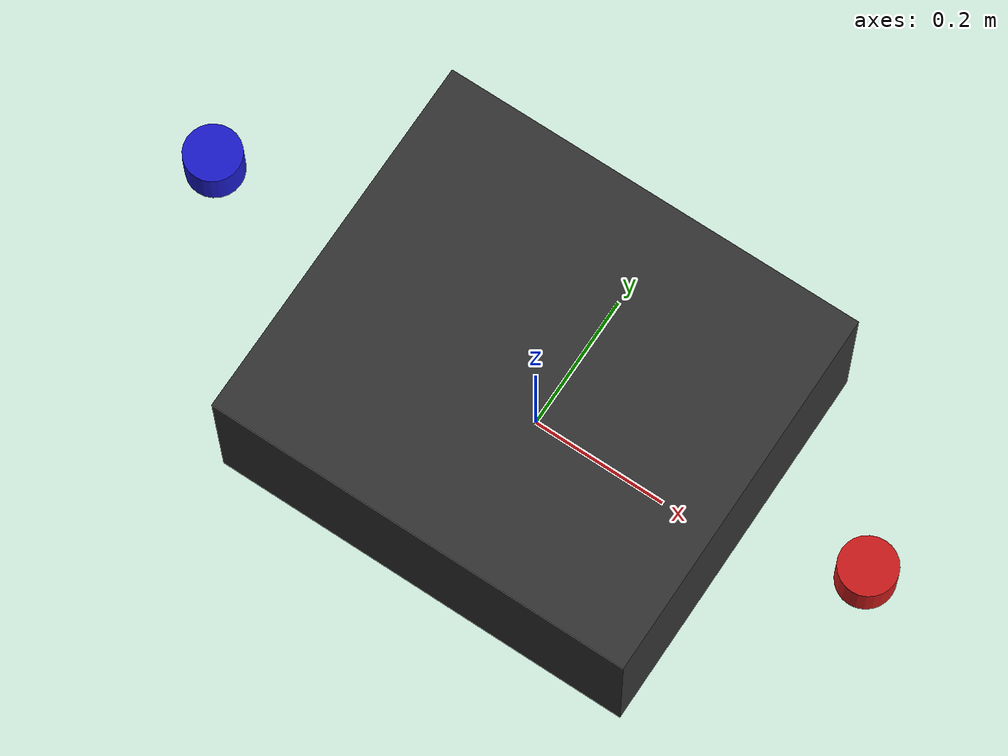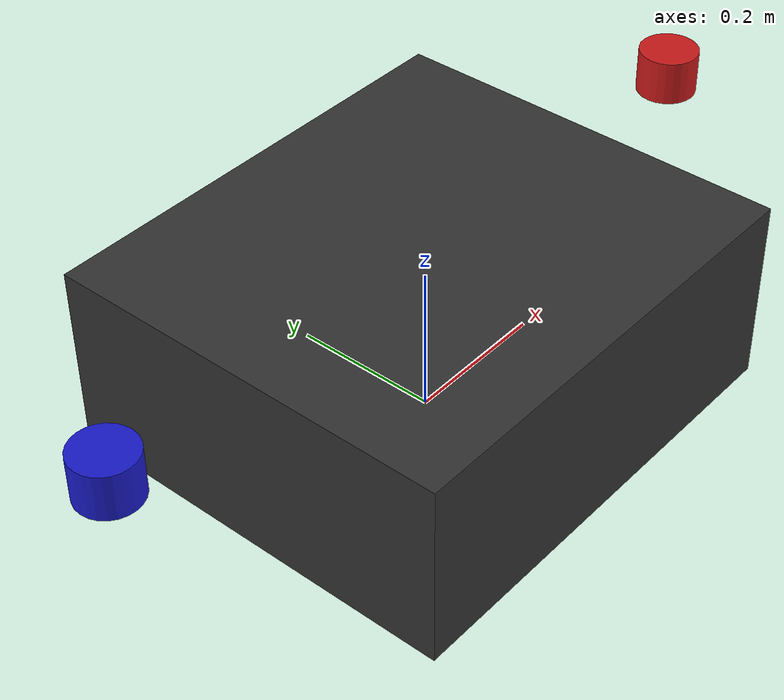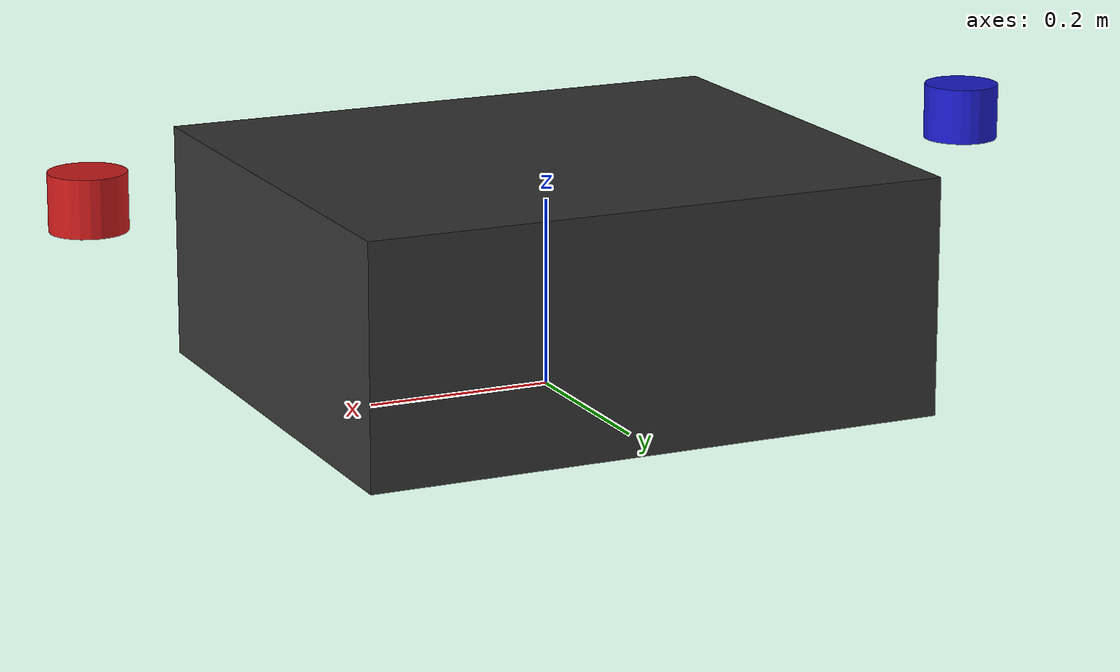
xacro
<?xml version="1.0"?>
<robot xmlns:xacro="http://www.ros.org/wiki/xacro" name="scout_mini">

  <!-- ==================== PROPERTIES ==================== -->
  <xacro:property name="PI" value="3.1415926535897931"/>

  <!-- Scout Mini Dimensions (approximate from AgileX specs) -->
  <xacro:property name="base_length" value="0.627"/>
  <xacro:property name="base_width" value="0.550"/>
  <xacro:property name="base_height" value="0.252"/>
  <xacro:property name="base_z_offset" value="0.126"/>
  <xacro:property name="wheel_radius" value="0.0825"/>
  <xacro:property name="wheel_width" value="0.075"/>
  <xacro:property name="wheel_separation" value="0.406"/>
  <xacro:property name="wheel_y_offset" value="0.203"/>
  <xacro:property name="wheel_x_offset" value="0.0"/>

  <!-- LiDAR properties -->
  <xacro:property name="lidar_mass" value="0.3"/>
  <xacro:property name="lidar_radius" value="0.04"/>
  <xacro:property name="lidar_height" value="0.06"/>

  <!-- Front LiDAR position (from scout_lidar reference) -->
  <xacro:property name="front_lidar_x" value="0.5"/>
  <xacro:property name="front_lidar_y" value="0.0"/>
  <xacro:property name="front_lidar_z" value="0.25"/>
  <xacro:property name="front_lidar_yaw" value="0.0"/>

  <!-- Rear LiDAR position (from scout_lidar reference) -->
  <xacro:property name="rear_lidar_x" value="-0.5"/>
  <xacro:property name="rear_lidar_y" value="0.0"/>
  <xacro:property name="rear_lidar_z" value="0.25"/>
  <xacro:property name="rear_lidar_yaw" value="3.1416"/>

  <!-- ==================== BASE LINK ==================== -->
  <link name="base_link">
    <inertial>
      <origin xyz="0.0 0.0 ${base_z_offset}" rpy="0 0 0"/>
      <mass value="20.0"/>
      <inertia ixx="0.35" ixy="0.0" ixz="0.0"
               iyy="0.55" iyz="0.0"
               izz="0.65"/>
    </inertial>
    <visual>
      <origin xyz="0.0 0.0 ${base_z_offset}" rpy="0 0 0"/>
      <geometry>
        <box size="${base_length} ${base_width} ${base_height}"/>
      </geometry>
      <material name="scout_body">
        <color rgba="0.2 0.2 0.2 1.0"/>
      </material>
    </visual>
    <collision>
      <origin xyz="0.0 0.0 ${base_z_offset}" rpy="0 0 0"/>
      <geometry>
        <box size="${base_length} ${base_width} ${base_height}"/>
      </geometry>
    </collision>
  </link>

  <!-- ==================== WHEELS ==================== -->
  <xacro:macro name="wheel" params="prefix x y side">
    <link name="${prefix}_wheel_link">
      <inertial>
        <origin xyz="0 0 0" rpy="0 0 0"/>
        <mass value="1.5"/>
        <inertia ixx="0.005" ixy="0.0" ixz="0.0"
                 iyy="0.008" iyz="0.0"
                 izz="0.005"/>
      </inertial>
      <visual>
        <origin xyz="0 0 0" rpy="${PI/2} 0 0"/>
        <geometry>
          <cylinder radius="${wheel_radius}" length="${wheel_width}"/>
        </geometry>
        <material name="wheel">
          <color rgba="0.1 0.1 0.1 1.0"/>
        </material>
      </visual>
      <collision>
        <origin xyz="0 0 0" rpy="${PI/2} 0 0"/>
        <geometry>
          <cylinder radius="${wheel_radius}" length="${wheel_width}"/>
        </geometry>
      </collision>
    </link>

    <joint name="${prefix}_wheel_joint" type="continuous">
      <parent link="base_link"/>
      <child link="${prefix}_wheel_link"/>
      <origin xyz="${x} ${y} ${wheel_radius}" rpy="0 0 0"/>
      <axis xyz="0 1 0"/>
    </joint>
  </xacro:macro>

  <xacro:wheel prefix="front_left"  x="${wheel_x_offset}"  y="${wheel_y_offset}"  side="left"/>
  <xacro:wheel prefix="front_right" x="${wheel_x_offset}"  y="-${wheel_y_offset}" side="right"/>
  <xacro:wheel prefix="rear_left"   x="-${wheel_x_offset}" y="${wheel_y_offset}"  side="left"/>
  <xacro:wheel prefix="rear_right"  x="-${wheel_x_offset}" y="-${wheel_y_offset}" side="right"/>

  <!-- ==================== FRONT LIDAR ==================== -->
  <link name="front_lidar_link">
    <inertial>
      <origin xyz="0 0 0" rpy="0 0 0"/>
      <mass value="${lidar_mass}"/>
      <inertia ixx="0.0001" ixy="0.0" ixz="0.0"
               iyy="0.0001" iyz="0.0"
               izz="0.0001"/>
    </inertial>
    <visual>
      <origin xyz="0 0 0" rpy="0 0 0"/>
      <geometry>
        <cylinder radius="${lidar_radius}" length="${lidar_height}"/>
      </geometry>
      <material name="lidar">
        <color rgba="0.8 0.1 0.1 1.0"/>
      </material>
    </visual>
    <collision>
      <origin xyz="0 0 0" rpy="0 0 0"/>
      <geometry>
        <cylinder radius="${lidar_radius}" length="${lidar_height}"/>
      </geometry>
    </collision>
  </link>

  <joint name="front_lidar_joint" type="fixed">
    <parent link="base_link"/>
    <child link="front_lidar_link"/>
    <origin xyz="${front_lidar_x} ${front_lidar_y} ${front_lidar_z}"
            rpy="0 0 ${front_lidar_yaw}"/>
  </joint>

  <!-- ==================== REAR LIDAR ==================== -->
  <link name="rear_lidar_link">
    <inertial>
      <origin xyz="0 0 0" rpy="0 0 0"/>
      <mass value="${lidar_mass}"/>
      <inertia ixx="0.0001" ixy="0.0" ixz="0.0"
               iyy="0.0001" iyz="0.0"
               izz="0.0001"/>
    </inertial>
    <visual>
      <origin xyz="0 0 0" rpy="0 0 0"/>
      <geometry>
        <cylinder radius="${lidar_radius}" length="${lidar_height}"/>
      </geometry>
      <material name="lidar_rear">
        <color rgba="0.1 0.1 0.8 1.0"/>
      </material>
    </visual>
    <collision>
      <origin xyz="0 0 0" rpy="0 0 0"/>
      <geometry>
        <cylinder radius="${lidar_radius}" length="${lidar_height}"/>
      </geometry>
    </collision>
  </link>

  <joint name="rear_lidar_joint" type="fixed">
    <parent link="base_link"/>
    <child link="rear_lidar_link"/>
    <origin xyz="${rear_lidar_x} ${rear_lidar_y} ${rear_lidar_z}"
            rpy="0 0 ${rear_lidar_yaw}"/>
  </joint>

  <!-- ==================== IMU LINK ==================== -->
  <link name="imu_link">
    <inertial>
      <mass value="0.01"/>
      <inertia ixx="0.000001" ixy="0" ixz="0" iyy="0.000001" iyz="0" izz="0.000001"/>
    </inertial>
  </link>
  <joint name="imu_joint" type="fixed">
    <parent link="base_link"/>
    <child link="imu_link"/>
    <origin xyz="0 0 0.1" rpy="0 0 0"/>
  </joint>

  <!-- ==================== GAZEBO PLUGINS (Ignition Fortress) ==================== -->
  <!-- Differential Drive Plugin -->
  <gazebo>
    <plugin filename="ignition-gazebo-diff-drive-system" name="ignition::gazebo::systems::DiffDrive">
      <left_joint>front_left_wheel_joint</left_joint>
      <left_joint>rear_left_wheel_joint</left_joint>
      <right_joint>front_right_wheel_joint</right_joint>
      <right_joint>rear_right_wheel_joint</right_joint>
      <wheel_separation>${wheel_separation * 2}</wheel_separation>
      <wheel_radius>${wheel_radius}</wheel_radius>
      <odom_publish_frequency>50</odom_publish_frequency>
      <topic>cmd_vel</topic>
      <odom_topic>odom</odom_topic>
      <frame_id>odom</frame_id>
      <child_frame_id>base_link</child_frame_id>
      <velocity_iterations>10</velocity_iterations>
      <position_iterations>10</position_iterations>
    </plugin>
  </gazebo>

  <!-- IMU Plugin -->
  <gazebo reference="imu_link">
    <plugin filename="ignition-gazebo-imu-system" name="ignition::gazebo::systems::Imu">
      <topic>imu</topic>
    </plugin>
  </gazebo>

  <!-- Front LiDAR Sensor (Ignition Fortress GPU Lidar) -->
  <gazebo reference="front_lidar_link">
    <sensor name="front_lidar_sensor" type="gpu_lidar">
      <update_rate>10</update_rate>
      <topic>front_lidar_scan</topic>
      <gz_frame_id>front_lidar_link</gz_frame_id>
      <lidar>
        <scan>
          <horizontal>
            <samples>720</samples>
            <resolution>1</resolution>
            <min_angle>-3.14159</min_angle>
            <max_angle>3.14159</max_angle>
          </horizontal>
          <vertical>
            <samples>1</samples>
            <resolution>1</resolution>
            <min_angle>0</min_angle>
            <max_angle>0</max_angle>
          </vertical>
        </scan>
        <range>
          <min>0.2</min>
          <max>50.0</max>
          <resolution>0.01</resolution>
        </range>
        <noise>
          <type>gaussian</type>
          <mean>0.0</mean>
          <stddev>0.01</stddev>
        </noise>
      </lidar>
      <always_on>true</always_on>
      <visualize>true</visualize>
    </sensor>
  </gazebo>

  <!-- Rear LiDAR Sensor (Ignition Fortress GPU Lidar) -->
  <gazebo reference="rear_lidar_link">
    <sensor name="rear_lidar_sensor" type="gpu_lidar">
      <update_rate>10</update_rate>
      <topic>rear_lidar_scan</topic>
      <gz_frame_id>rear_lidar_link</gz_frame_id>
      <lidar>
        <scan>
          <horizontal>
            <samples>720</samples>
            <resolution>1</resolution>
            <min_angle>-3.14159</min_angle>
            <max_angle>3.14159</max_angle>
          </horizontal>
          <vertical>
            <samples>1</samples>
            <resolution>1</resolution>
            <min_angle>0</min_angle>
            <max_angle>0</max_angle>
          </vertical>
        </scan>
        <range>
          <min>0.2</min>
          <max>50.0</max>
          <resolution>0.01</resolution>
        </range>
        <noise>
          <type>gaussian</type>
          <mean>0.0</mean>
          <stddev>0.01</stddev>
        </noise>
      </lidar>
      <always_on>true</always_on>
      <visualize>true</visualize>
    </sensor>
  </gazebo>

  <!-- Contact Sensor for stability -->
  <gazebo reference="base_link">
    <mu1>0.5</mu1>
    <mu2>0.5</mu2>
    <self_collide>false</self_collide>
  </gazebo>

  <gazebo reference="front_left_wheel_link">
    <mu1>0.9</mu1>
    <mu2>0.9</mu2>
  </gazebo>
  <gazebo reference="front_right_wheel_link">
    <mu1>0.9</mu1>
    <mu2>0.9</mu2>
  </gazebo>
  <gazebo reference="rear_left_wheel_link">
    <mu1>0.9</mu1>
    <mu2>0.9</mu2>
  </gazebo>
  <gazebo reference="rear_right_wheel_link">
    <mu1>0.9</mu1>
    <mu2>0.9</mu2>
  </gazebo>

</robot>
